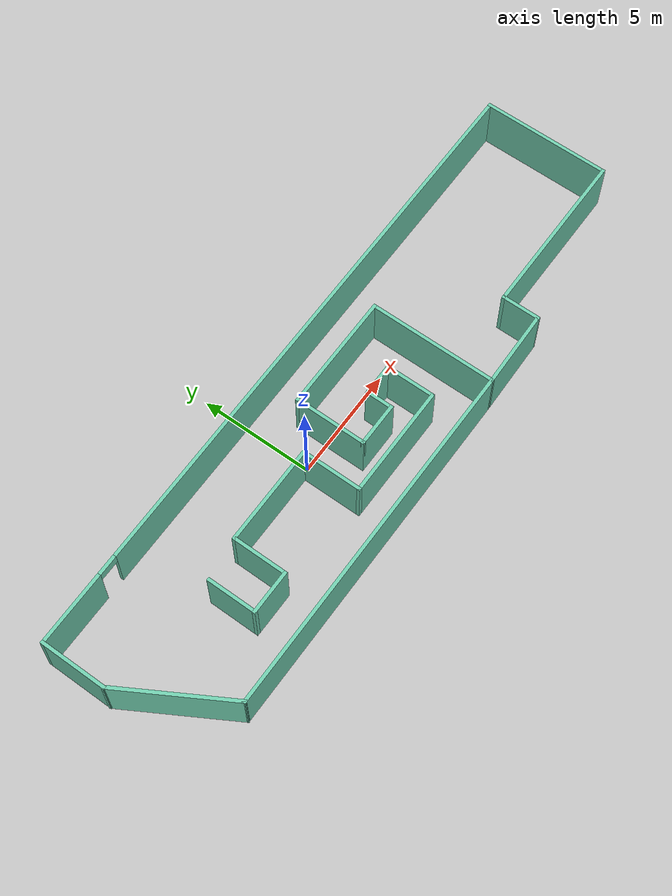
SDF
<?xml version='1.0'?>
<sdf version='1.6'>
  <model name='home2'>
    <pose frame=''>2.58786 -0.613583 0 0 -0 0</pose>
    <link name='Wall_0'>
      <collision name='Wall_0_Collision'>
        <geometry>
          <box>
            <size>16 0.15 2.5</size>
          </box>
        </geometry>
        <pose frame=''>0 0 1.25 0 -0 0</pose>
      </collision>
      <visual name='Wall_0_Visual'>
        <pose frame=''>0 0 1.25 0 -0 0</pose>
        <geometry>
          <box>
            <size>16 0.15 2.5</size>
          </box>
        </geometry>
        <material>
          <script>
            <uri>file://media/materials/scripts/gazebo.material</uri>
            <name>Gazebo/Grey</name>
          </script>
          <ambient>0.435294 0.796078 0.67451 1</ambient>
        </material>
        <meta>
          <layer>0</layer>
        </meta>
      </visual>
      <pose frame=''>-4.06127 -3.61964 0 0 -0 3.14159</pose>
    </link>
    <link name='Wall_1'>
      <collision name='Wall_1_Collision'>
        <geometry>
          <box>
            <size>5.25 0.15 2.5</size>
          </box>
        </geometry>
        <pose frame=''>0 0 1.25 0 -0 0</pose>
      </collision>
      <visual name='Wall_1_Visual'>
        <pose frame=''>0 0 1.25 0 -0 0</pose>
        <geometry>
          <box>
            <size>5.25 0.15 2.5</size>
          </box>
        </geometry>
        <material>
          <script>
            <uri>file://media/materials/scripts/gazebo.material</uri>
            <name>Gazebo/Grey</name>
          </script>
          <ambient>0.435294 0.796078 0.67451 1</ambient>
        </material>
        <meta>
          <layer>0</layer>
        </meta>
      </visual>
      <pose frame=''>-13.2613 -1.41127 0 0 -0 2.0944</pose>
    </link>
    <link name='Wall_10'>
      <collision name='Wall_10_Collision'>
        <geometry>
          <box>
            <size>3.25 0.15 2.5</size>
          </box>
        </geometry>
        <pose frame=''>0 0 1.25 0 -0 0</pose>
      </collision>
      <visual name='Wall_10_Visual'>
        <pose frame=''>0 0 1.25 0 -0 0</pose>
        <geometry>
          <box>
            <size>3.25 0.15 2.5</size>
          </box>
        </geometry>
        <material>
          <script>
            <uri>file://media/materials/scripts/gazebo.material</uri>
            <name>Gazebo/Grey</name>
          </script>
          <ambient>0.435294 0.796078 0.67451 1</ambient>
        </material>
        <meta>
          <layer>0</layer>
        </meta>
      </visual>
      <pose frame=''>-1.23627 0.430361 0 0 0 -1.5708</pose>
    </link>
    <link name='Wall_11'>
      <collision name='Wall_11_Collision'>
        <geometry>
          <box>
            <size>2 0.15 2.5</size>
          </box>
        </geometry>
        <pose frame=''>0 0 1.25 0 -0 0</pose>
      </collision>
      <visual name='Wall_11_Visual'>
        <pose frame=''>0 0 1.25 0 -0 0</pose>
        <geometry>
          <box>
            <size>2 0.15 2.5</size>
          </box>
        </geometry>
        <material>
          <script>
            <uri>file://media/materials/scripts/gazebo.material</uri>
            <name>Gazebo/Grey</name>
          </script>
          <ambient>0.435294 0.796078 0.67451 1</ambient>
        </material>
        <meta>
          <layer>0</layer>
        </meta>
      </visual>
      <pose frame=''>-0.311274 -1.11964 0 0 -0 0</pose>
    </link>
    <link name='Wall_12'>
      <collision name='Wall_12_Collision'>
        <geometry>
          <box>
            <size>1.25 0.15 2.5</size>
          </box>
        </geometry>
        <pose frame=''>0 0 1.25 0 -0 0</pose>
      </collision>
      <visual name='Wall_12_Visual'>
        <pose frame=''>0 0 1.25 0 -0 0</pose>
        <geometry>
          <box>
            <size>1.25 0.15 2.5</size>
          </box>
        </geometry>
        <material>
          <script>
            <uri>file://media/materials/scripts/gazebo.material</uri>
            <name>Gazebo/Grey</name>
          </script>
          <ambient>0.435294 0.796078 0.67451 1</ambient>
        </material>
        <meta>
          <layer>0</layer>
        </meta>
      </visual>
      <pose frame=''>0.613726 -0.569639 0 0 -0 1.5708</pose>
    </link>
    <link name='Wall_13'>
      <collision name='Wall_13_Collision'>
        <geometry>
          <box>
            <size>1.5 0.15 2.5</size>
          </box>
        </geometry>
        <pose frame=''>0 0 1.25 0 -0 0</pose>
      </collision>
      <visual name='Wall_13_Visual'>
        <pose frame=''>0 0 1.25 0 -0 0</pose>
        <geometry>
          <box>
            <size>1.5 0.15 2.5</size>
          </box>
        </geometry>
        <material>
          <script>
            <uri>file://media/materials/scripts/gazebo.material</uri>
            <name>Gazebo/Grey</name>
          </script>
          <ambient>0.435294 0.796078 0.67451 1</ambient>
        </material>
        <meta>
          <layer>0</layer>
        </meta>
      </visual>
      <pose frame=''>1.28873 -0.019639 0 0 -0 0</pose>
    </link>
    <link name='Wall_14'>
      <collision name='Wall_14_Collision'>
        <geometry>
          <box>
            <size>2.25 0.15 2.5</size>
          </box>
        </geometry>
        <pose frame=''>0 0 1.25 0 -0 0</pose>
      </collision>
      <visual name='Wall_14_Visual'>
        <pose frame=''>0 0 1.25 0 -0 0</pose>
        <geometry>
          <box>
            <size>2.25 0.15 2.5</size>
          </box>
        </geometry>
        <material>
          <script>
            <uri>file://media/materials/scripts/gazebo.material</uri>
            <name>Gazebo/Grey</name>
          </script>
          <ambient>0.435294 0.796078 0.67451 1</ambient>
        </material>
        <meta>
          <layer>0</layer>
        </meta>
      </visual>
      <pose frame=''>1.96373 -1.06964 0 0 0 -1.5708</pose>
    </link>
    <link name='Wall_15'>
      <collision name='Wall_15_Collision'>
        <geometry>
          <box>
            <size>5 0.15 2.5</size>
          </box>
        </geometry>
        <pose frame=''>0 0 1.25 0 -0 0</pose>
      </collision>
      <visual name='Wall_15_Visual'>
        <pose frame=''>0 0 1.25 0 -0 0</pose>
        <geometry>
          <box>
            <size>5 0.15 2.5</size>
          </box>
        </geometry>
        <material>
          <script>
            <uri>file://media/materials/scripts/gazebo.material</uri>
            <name>Gazebo/Grey</name>
          </script>
          <ambient>0.435294 0.796078 0.67451 1</ambient>
        </material>
        <meta>
          <layer>0</layer>
        </meta>
      </visual>
      <pose frame=''>-0.461274 -2.11964 0 0 -0 3.14159</pose>
    </link>
    <link name='Wall_16'>
      <collision name='Wall_16_Collision'>
        <geometry>
          <box>
            <size>2.75 0.15 2.5</size>
          </box>
        </geometry>
        <pose frame=''>0 0 1.25 0 -0 0</pose>
      </collision>
      <visual name='Wall_16_Visual'>
        <pose frame=''>0 0 1.25 0 -0 0</pose>
        <geometry>
          <box>
            <size>2.75 0.15 2.5</size>
          </box>
        </geometry>
        <material>
          <script>
            <uri>file://media/materials/scripts/gazebo.material</uri>
            <name>Gazebo/Grey</name>
          </script>
          <ambient>0.435294 0.796078 0.67451 1</ambient>
        </material>
        <meta>
          <layer>0</layer>
        </meta>
      </visual>
      <pose frame=''>-2.88627 -0.819639 0 0 -0 1.5708</pose>
    </link>
    <link name='Wall_17'>
      <collision name='Wall_17_Collision'>
        <geometry>
          <box>
            <size>4.5 0.15 2.5</size>
          </box>
        </geometry>
        <pose frame=''>0 0 1.25 0 -0 0</pose>
      </collision>
      <visual name='Wall_17_Visual'>
        <pose frame=''>0 0 1.25 0 -0 0</pose>
        <geometry>
          <box>
            <size>4.5 0.15 2.5</size>
          </box>
        </geometry>
        <material>
          <script>
            <uri>file://media/materials/scripts/gazebo.material</uri>
            <name>Gazebo/Grey</name>
          </script>
          <ambient>0.435294 0.796078 0.67451 1</ambient>
        </material>
        <meta>
          <layer>0</layer>
        </meta>
      </visual>
      <pose frame=''>-5.06127 0.480361 0 0 -0 3.14159</pose>
    </link>
    <link name='Wall_18'>
      <collision name='Wall_18_Collision'>
        <geometry>
          <box>
            <size>2.5 0.15 2.5</size>
          </box>
        </geometry>
        <pose frame=''>0 0 1.25 0 -0 0</pose>
      </collision>
      <visual name='Wall_18_Visual'>
        <pose frame=''>0 0 1.25 0 -0 0</pose>
        <geometry>
          <box>
            <size>2.5 0.15 2.5</size>
          </box>
        </geometry>
        <material>
          <script>
            <uri>file://media/materials/scripts/gazebo.material</uri>
            <name>Gazebo/Grey</name>
          </script>
          <ambient>0.435294 0.796078 0.67451 1</ambient>
        </material>
        <meta>
          <layer>0</layer>
        </meta>
      </visual>
      <pose frame=''>-7.23627 -0.694639 0 0 0 -1.5708</pose>
    </link>
    <link name='Wall_19'>
      <collision name='Wall_19_Collision'>
        <geometry>
          <box>
            <size>2 0.15 2.5</size>
          </box>
        </geometry>
        <pose frame=''>0 0 1.25 0 -0 0</pose>
      </collision>
      <visual name='Wall_19_Visual'>
        <pose frame=''>0 0 1.25 0 -0 0</pose>
        <geometry>
          <box>
            <size>2 0.15 2.5</size>
          </box>
        </geometry>
        <material>
          <script>
            <uri>file://media/materials/scripts/gazebo.material</uri>
            <name>Gazebo/Grey</name>
          </script>
          <ambient>0.435294 0.796078 0.67451 1</ambient>
        </material>
        <meta>
          <layer>0</layer>
        </meta>
      </visual>
      <pose frame=''>-8.16127 -1.86964 0 0 -0 3.14159</pose>
    </link>
    <link name='Wall_2'>
      <collision name='Wall_2_Collision'>
        <geometry>
          <box>
            <size>3 0.15 2.5</size>
          </box>
        </geometry>
        <pose frame=''>0 0 1.25 0 -0 0</pose>
      </collision>
      <visual name='Wall_2_Visual'>
        <pose frame=''>0 0 1.25 0 -0 0</pose>
        <geometry>
          <box>
            <size>3 0.15 2.5</size>
          </box>
        </geometry>
        <material>
          <script>
            <uri>file://media/materials/scripts/gazebo.material</uri>
            <name>Gazebo/Grey</name>
          </script>
          <ambient>0.435294 0.796078 0.67451 1</ambient>
        </material>
        <meta>
          <layer>0</layer>
        </meta>
      </visual>
      <pose frame=''>-14.5363 2.22209 0 0 -0 1.5708</pose>
    </link>
    <link name='Wall_20'>
      <collision name='Wall_20_Collision'>
        <geometry>
          <box>
            <size>2.25 0.15 2.5</size>
          </box>
        </geometry>
        <pose frame=''>0 0 1.25 0 -0 0</pose>
      </collision>
      <visual name='Wall_20_Visual'>
        <pose frame=''>0 0 1.25 0 -0 0</pose>
        <geometry>
          <box>
            <size>2.25 0.15 2.5</size>
          </box>
        </geometry>
        <material>
          <script>
            <uri>file://media/materials/scripts/gazebo.material</uri>
            <name>Gazebo/Grey</name>
          </script>
          <ambient>0.435294 0.796078 0.67451 1</ambient>
        </material>
        <meta>
          <layer>0</layer>
        </meta>
      </visual>
      <pose frame=''>-9.08627 -0.819639 0 0 -0 1.5708</pose>
    </link>
    <link name='Wall_3'>
      <pose frame=''>0.013726 3.64709 0 0 -0 0</pose>
      <visual name='Wall_3_Visual_0'>
        <pose frame=''>-12.9695 0 1.25 0 -0 0</pose>
        <geometry>
          <box>
            <size>3.3111 0.15 2.5</size>
          </box>
        </geometry>
        <material>
          <script>
            <uri>file://media/materials/scripts/gazebo.material</uri>
            <name>Gazebo/Grey</name>
          </script>
          <ambient>0.435294 0.796078 0.67451 1</ambient>
        </material>
        <meta>
          <layer>0</layer>
        </meta>
      </visual>
      <collision name='Wall_3_Collision_0'>
        <geometry>
          <box>
            <size>3.3111 0.15 2.5</size>
          </box>
        </geometry>
        <pose frame=''>-12.9695 0 1.25 0 -0 0</pose>
      </collision>
      <visual name='Wall_3_Visual_1'>
        <pose frame=''>2.10555 0 1.25 0 -0 0</pose>
        <geometry>
          <box>
            <size>25.0389 0.15 2.5</size>
          </box>
        </geometry>
        <material>
          <script>
            <uri>file://media/materials/scripts/gazebo.material</uri>
            <name>Gazebo/Grey</name>
          </script>
          <ambient>0.435294 0.796078 0.67451 1</ambient>
        </material>
        <meta>
          <layer>0</layer>
        </meta>
      </visual>
      <collision name='Wall_3_Collision_1'>
        <geometry>
          <box>
            <size>25.0389 0.15 2.5</size>
          </box>
        </geometry>
        <pose frame=''>2.10555 0 1.25 0 -0 0</pose>
      </collision>
      <visual name='Wall_3_Visual_2'>
        <pose frame=''>-10.8639 0 2.25 0 -0 0</pose>
        <geometry>
          <box>
            <size>0.9 0.15 0.5</size>
          </box>
        </geometry>
        <material>
          <script>
            <uri>file://media/materials/scripts/gazebo.material</uri>
            <name>Gazebo/Grey</name>
          </script>
          <ambient>0.435294 0.796078 0.67451 1</ambient>
        </material>
        <meta>
          <layer>0</layer>
        </meta>
      </visual>
      <collision name='Wall_3_Collision_2'>
        <geometry>
          <box>
            <size>0.9 0.15 0.5</size>
          </box>
        </geometry>
        <pose frame=''>-10.8639 0 2.25 0 -0 0</pose>
      </collision>
    </link>
    <link name='Wall_4'>
      <collision name='Wall_4_Collision'>
        <geometry>
          <box>
            <size>5.75 0.15 2.5</size>
          </box>
        </geometry>
        <pose frame=''>0 0 1.25 0 -0 0</pose>
      </collision>
      <visual name='Wall_4_Visual'>
        <pose frame=''>0 0 1.25 0 -0 0</pose>
        <geometry>
          <box>
            <size>5.75 0.15 2.5</size>
          </box>
        </geometry>
        <material>
          <script>
            <uri>file://media/materials/scripts/gazebo.material</uri>
            <name>Gazebo/Grey</name>
          </script>
          <ambient>0.435294 0.796078 0.67451 1</ambient>
        </material>
        <meta>
          <layer>0</layer>
        </meta>
      </visual>
      <pose frame=''>14.5637 0.847091 0 0 0 -1.5708</pose>
    </link>
    <link name='Wall_5'>
      <collision name='Wall_5_Collision'>
        <geometry>
          <box>
            <size>7.5 0.15 2.5</size>
          </box>
        </geometry>
        <pose frame=''>0 0 1.25 0 -0 0</pose>
      </collision>
      <visual name='Wall_5_Visual'>
        <pose frame=''>0 0 1.25 0 -0 0</pose>
        <geometry>
          <box>
            <size>7.5 0.15 2.5</size>
          </box>
        </geometry>
        <material>
          <script>
            <uri>file://media/materials/scripts/gazebo.material</uri>
            <name>Gazebo/Grey</name>
          </script>
          <ambient>0.435294 0.796078 0.67451 1</ambient>
        </material>
        <meta>
          <layer>0</layer>
        </meta>
      </visual>
      <pose frame=''>10.8887 -1.95291 0 0 -0 3.14159</pose>
    </link>
    <link name='Wall_6'>
      <collision name='Wall_6_Collision'>
        <geometry>
          <box>
            <size>1.75 0.15 2.5</size>
          </box>
        </geometry>
        <pose frame=''>0 0 1.25 0 -0 0</pose>
      </collision>
      <visual name='Wall_6_Visual'>
        <pose frame=''>0 0 1.25 0 -0 0</pose>
        <geometry>
          <box>
            <size>1.75 0.15 2.5</size>
          </box>
        </geometry>
        <material>
          <script>
            <uri>file://media/materials/scripts/gazebo.material</uri>
            <name>Gazebo/Grey</name>
          </script>
          <ambient>0.435294 0.796078 0.67451 1</ambient>
        </material>
        <meta>
          <layer>0</layer>
        </meta>
      </visual>
      <pose frame=''>7.21373 -2.75291 0 0 0 -1.5708</pose>
    </link>
    <link name='Wall_7'>
      <collision name='Wall_7_Collision'>
        <geometry>
          <box>
            <size>3.50067 0.15 2.5</size>
          </box>
        </geometry>
        <pose frame=''>0 0 1.25 0 -0 0</pose>
      </collision>
      <visual name='Wall_7_Visual'>
        <pose frame=''>0 0 1.25 0 -0 0</pose>
        <geometry>
          <box>
            <size>3.50067 0.15 2.5</size>
          </box>
        </geometry>
        <material>
          <script>
            <uri>file://media/materials/scripts/gazebo.material</uri>
            <name>Gazebo/Grey</name>
          </script>
          <ambient>0.435294 0.796078 0.67451 1</ambient>
        </material>
        <meta>
          <layer>0</layer>
        </meta>
      </visual>
      <pose frame=''>5.53873 -3.58627 0 0 0 -3.12168</pose>
    </link>
    <link name='Wall_8'>
      <collision name='Wall_8_Collision'>
        <geometry>
          <box>
            <size>5.75 0.15 2.5</size>
          </box>
        </geometry>
        <pose frame=''>0 0 1.25 0 -0 0</pose>
      </collision>
      <visual name='Wall_8_Visual'>
        <pose frame=''>0 0 1.25 0 -0 0</pose>
        <geometry>
          <box>
            <size>5.75 0.15 2.5</size>
          </box>
        </geometry>
        <material>
          <script>
            <uri>file://media/materials/scripts/gazebo.material</uri>
            <name>Gazebo/Grey</name>
          </script>
          <ambient>0.435294 0.796078 0.67451 1</ambient>
        </material>
        <meta>
          <layer>0</layer>
        </meta>
      </visual>
      <pose frame=''>3.86373 -0.819639 0 0 -0 1.5708</pose>
    </link>
    <link name='Wall_9'>
      <collision name='Wall_9_Collision'>
        <geometry>
          <box>
            <size>5.25 0.15 2.5</size>
          </box>
        </geometry>
        <pose frame=''>0 0 1.25 0 -0 0</pose>
      </collision>
      <visual name='Wall_9_Visual'>
        <pose frame=''>0 0 1.25 0 -0 0</pose>
        <geometry>
          <box>
            <size>5.25 0.15 2.5</size>
          </box>
        </geometry>
        <material>
          <script>
            <uri>file://media/materials/scripts/gazebo.material</uri>
            <name>Gazebo/Grey</name>
          </script>
          <ambient>0.435294 0.796078 0.67451 1</ambient>
        </material>
        <meta>
          <layer>0</layer>
        </meta>
      </visual>
      <pose frame=''>1.31373 1.98036 0 0 -0 3.14159</pose>
    </link>
    <static>1</static>
  </model>
</sdf>
